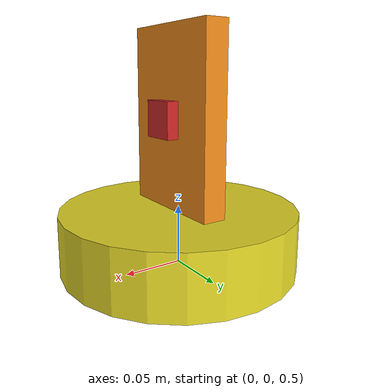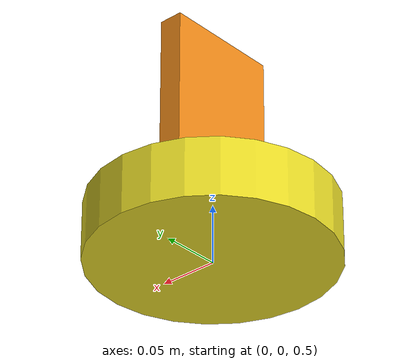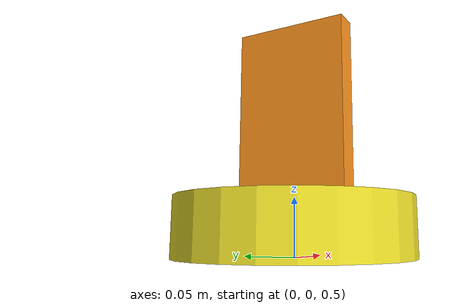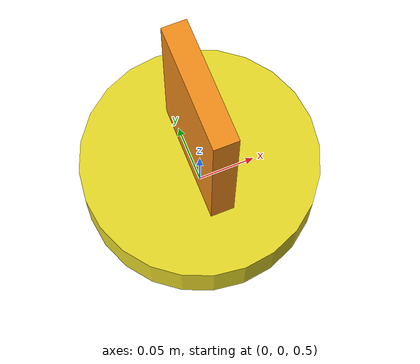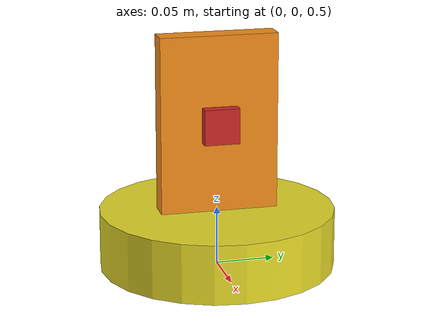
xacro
<?xml version="1.0"?>
<robot xmlns:xacro="http://www.ros.org/wiki/xacro" >

    <xacro:property name="laser_base_radius" value="0.1" />
    <xacro:property name="laser_base_length" value="0.05" />
    <xacro:property name="laser_holder_x" value="0.02"/>
    <xacro:property name="laser_holder_y" value="${laser_base_radius}"/>
    <xacro:property name="laser_holder_z" value="0.15"/>

    <!-- DUMMY LINK -->
    <link name="dummy_link"/>

    <!-- LASER BASE -->
    <joint name="laser_base_joint" type="fixed" >
        <parent link="dummy_link" />
        <child link="laser_base" />
        <origin xyz="0 0 0.5" />
    </joint>
    <link name="laser_base">
        <xacro:cylinder_inertia m="0.2" l="${laser_base_length}" r="${laser_base_radius}"
                                xyz="0 0 ${laser_base_length/2}" rpy="0 0 0"/>
    </link>

    <!-- LASER BASE LINK -->
    <joint name="laser_rev_joint" type="revolute">
        <parent link="laser_base" />
        <child link="laser_base_link" />
        <origin xyz="0 0 0" />
        <limit lower="${-pi/2}" upper="${pi/2}" effort="100" velocity="100"/>
        <axis  xyz="0 0 1"/>
        <dynamics friction="5."></dynamics>
    </joint>
    <link name="laser_base_link">
        <visual>
            <geometry>
                <cylinder radius="${laser_base_radius}" length="${laser_base_length}"/>
            </geometry>
            <origin xyz="0 0 ${laser_base_length/2}"/>
            <material name="yellow"/>
        </visual>
        <collision>
            <geometry>
                <cylinder radius="${laser_base_radius}" length="${laser_base_length}"/>
            </geometry>
            <origin xyz="0 0 ${laser_base_length/2}"/>
        </collision>
        <xacro:cylinder_inertia m="0.2" l="${laser_base_length}" r="${laser_base_radius}"
                                xyz="0 0 ${laser_base_length/2}" rpy="0 0 0"/>
    </link>
    <gazebo reference="laser_base_link">
        <material>Gazebo/Yellow</material>
    </gazebo>

    <!-- TEST -->
    <joint name="laser_holder_joint" type="revolute">
        <parent link="laser_base_link" />
        <child link="laser_holder" />
        <origin xyz="0 0 ${laser_base_length}" />
        <limit lower="${-pi/2}" upper="${pi/2}" effort="100" velocity="100"/>
        <axis  xyz="0 1 0"/>
        <dynamics friction="5."></dynamics>
    </joint>
    <link name="laser_holder">
        <visual>
            <geometry>
                <box size="${laser_holder_x} ${laser_holder_y} ${laser_holder_z}"/>
            </geometry>
            <origin xyz="0 0 ${laser_holder_z/2}"/>
            <material name="orange"/>
        </visual>
        <collision>
            <geometry>
                <box size="${laser_holder_x} ${laser_holder_y} ${laser_holder_z}"/>
            </geometry>
            <origin xyz="0 0 ${laser_holder_z/2}"/>
        </collision>
        <xacro:box_inertia m="0.2" l="${laser_holder_x}" w="${laser_holder_y}" h="${laser_holder_z}"
                                xyz="0 0 ${laser_holder_z/2}" rpy="0 0 0"/>
    </link>
    <gazebo reference="laser_holder">
        <material>Gazebo/Orange</material>
    </gazebo>

    <!-- CAMERA LINK -->
    <joint name="laser_camera_joint" type="fixed">
        <parent link="laser_holder"/>
        <child link="laser_camera_link"/>
        <origin xyz="${laser_holder_x/2 + 0.005} 0 ${laser_holder_z/2}" rpy="0 0 0"/>
    </joint>

    <link name="laser_camera_link">
        <visual>
            <geometry>
                <box size="0.01 0.03 0.03"/>
            </geometry>
            <material name="red"/>
        </visual>
    </link>

    <!-- GAZEBO STUFF -->
    <joint name="laser_camera_optical_joint" type="fixed">
        <parent link="laser_camera_link"/>
        <child link="laser_camera_link_optical"/>
        <origin xyz="0 0 0" rpy="${-pi/2} 0 ${-pi/2}"/>
    </joint>
    <link name="laser_camera_link_optical"></link>

    <gazebo reference="laser_camera_link">
        <material>Gazebo/Red</material>
        <sensor name="camera" type="camera">
            <pose>0 0 0 0 0 0</pose>
            <visualize>true</visualize>
            <update_rate>10.</update_rate>

            <camera>
                <horizontal_fov>1.089</horizontal_fov>
                <image>
                    <format>R8G8B8</format>
                    <width>640</width>
                    <height>480</height>
                </image>
                <clip>
                    <near>0.05</near>
                    <far>8.0</far>
                </clip>
            </camera>

            <plugin name="laser_camera_driver_gazebo" filename="libgazebo_ros_camera.so">
                <frame_name>laser_camera_link_optical</frame_name>
            </plugin>
        </sensor>
    </gazebo>

    <gazebo>
        <plugin name="joint_state_publisher" filename="libgazebo_ros_joint_state_publisher.so">
            <joint_name>laser_rev_joint</joint_name>
            <joint_name>laser_holder_joint</joint_name>
            <update_rate>10.</update_rate>
        </plugin>
    </gazebo>

    <gazebo>
        <plugin name="pose_trajectory" filename="libgazebo_ros_joint_pose_trajectory.so">
            <update_rate>2.</update_rate>
        </plugin>
    </gazebo>

</robot>
